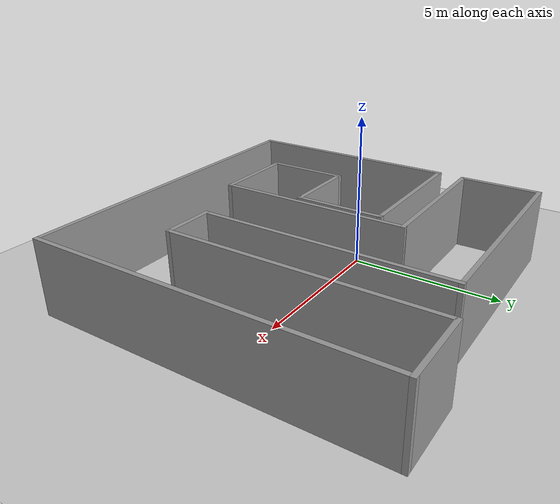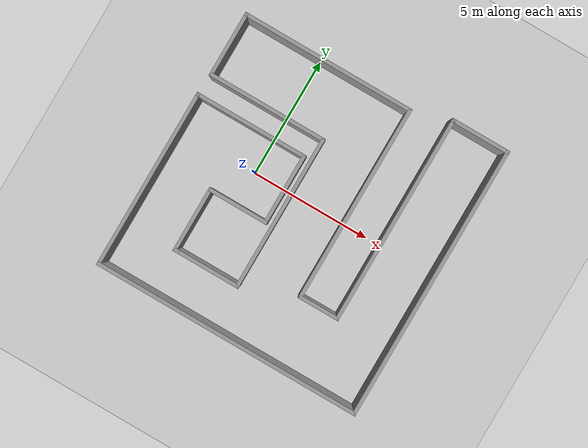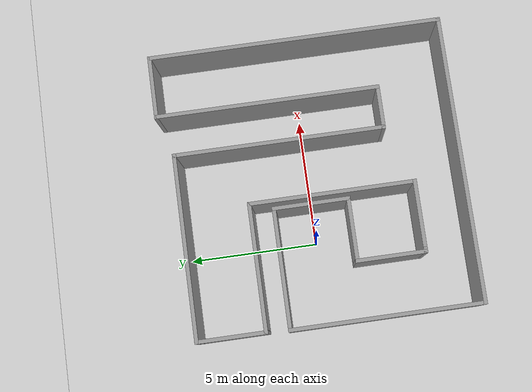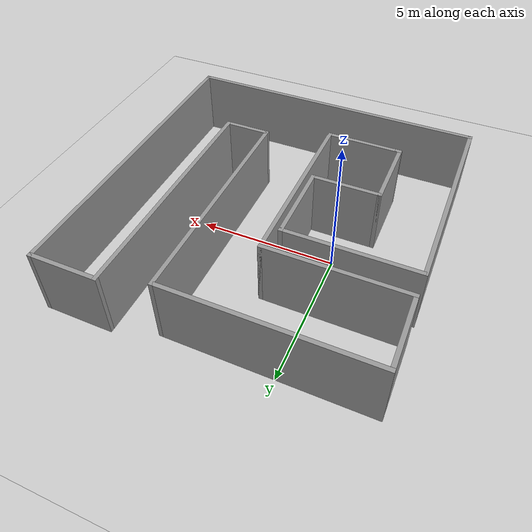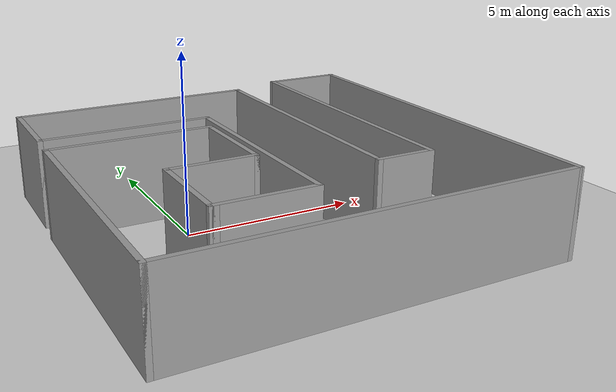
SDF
<sdf version="1.7">
 <world name="default">
  <light name="sun" type="directional">
   <pose>0 0 10 0 -0 0</pose>
   <diffuse>0.8 0.8 0.8 1</diffuse>
   <specular>0.2 0.2 0.2 1</specular>
   <attenuation>
    <range>1000</range>
    <constant>0.9</constant>
    <linear>0.01</linear>
    <quadratic>0.001</quadratic>
   </attenuation>
   <direction>-0.5 0.1 -0.9</direction>
   <spot><inner_angle>0</inner_angle><outer_angle>0</outer_angle><falloff>0</falloff></spot>
  </light>
  <model name="ground_plane">
   <static>1</static>
   <link name="link">
    <collision name="collision">
     <geometry><plane><normal>0 0 1</normal><size>100 100</size></plane></geometry>
     <surface>
      <contact><collide_bitmask>65535</collide_bitmask></contact>
      <friction><ode><mu>100</mu><mu2>50</mu2></ode></friction>
     </surface>
    </collision>
    <visual name="visual">
     <cast_shadows>0</cast_shadows>
     <geometry><plane><normal>0 0 1</normal><size>100 100</size></plane></geometry>
     <material>
      <script><uri>file://media/materials/scripts/gazebo.material</uri><name>Gazebo/Grey</name></script>
     </material>
    </visual>
   </link>
  </model>
  <gravity>0 0 -9.8</gravity>
  <magnetic_field>6e-06 2.3e-05 -4.2e-05</magnetic_field>
  <atmosphere type="adiabatic"/>
  <physics type="ode">
   <max_step_size>0.001</max_step_size>
   <real_time_factor>1</real_time_factor>
   <real_time_update_rate>1000</real_time_update_rate>
  </physics>
  <scene><ambient>0.4 0.4 0.4 1</ambient><background>0.7 0.7 0.7 1</background><shadows>1</shadows></scene>
  <audio><device>default</device></audio>
  <spherical_coordinates>
   <surface_model>EARTH_WGS84</surface_model>
   <latitude_deg>0</latitude_deg>
   <longitude_deg>0</longitude_deg>
   <elevation>0</elevation>
   <heading_deg>0</heading_deg>
  </spherical_coordinates>
  <model name="envi6">
   <pose>2.29548 -0.233575 0 0 -0 0</pose>
   <link name="Wall_10">
    <collision name="Wall_10_Collision">
     <geometry><box><size>2.5 0.15 2.5</size></box></geometry>
     <pose>0 0 1.25 0 -0 0</pose>
    </collision>
    <visual name="Wall_10_Visual">
     <pose>0 0 1.25 0 -0 0</pose>
     <geometry><box><size>2.5 0.15 2.5</size></box></geometry>
     <material>
      <script><uri>file://media/materials/scripts/gazebo.material</uri><name>Gazebo/Grey</name></script>
      <ambient>1 1 1 1</ambient>
     </material>
     <meta><layer>0</layer></meta>
    </visual>
    <pose>4.375 5.675 0 0 -0 3.14159</pose>
   </link>
   <link name="Wall_11">
    <collision name="Wall_11_Collision">
     <geometry><box><size>8.75 0.15 2.5</size></box></geometry>
     <pose>0 0 1.25 0 -0 0</pose>
    </collision>
    <visual name="Wall_11_Visual">
     <pose>0 0 1.25 0 -0 0</pose>
     <geometry><box><size>8.75 0.15 2.5</size></box></geometry>
     <material>
      <script><uri>file://media/materials/scripts/gazebo.material</uri><name>Gazebo/Grey</name></script>
      <ambient>1 1 1 1</ambient>
     </material>
     <meta><layer>0</layer></meta>
    </visual>
    <pose>3.2 1.375 0 0 -0 -1.5708</pose>
   </link>
   <link name="Wall_12">
    <collision name="Wall_12_Collision">
     <geometry><box><size>1.75 0.15 2.5</size></box></geometry>
     <pose>0 0 1.25 0 -0 0</pose>
    </collision>
    <visual name="Wall_12_Visual">
     <pose>0 0 1.25 0 -0 0</pose>
     <geometry><box><size>1.75 0.15 2.5</size></box></geometry>
     <material>
      <script><uri>file://media/materials/scripts/gazebo.material</uri><name>Gazebo/Grey</name></script>
      <ambient>1 1 1 1</ambient>
     </material>
     <meta><layer>0</layer></meta>
    </visual>
    <pose>2.4 -2.925 0 0 -0 3.14159</pose>
   </link>
   <link name="Wall_13">
    <collision name="Wall_13_Collision">
     <geometry><box><size>8.25 0.15 2.5</size></box></geometry>
     <pose>0 0 1.25 0 -0 0</pose>
    </collision>
    <visual name="Wall_13_Visual">
     <pose>0 0 1.25 0 -0 0</pose>
     <geometry><box><size>8.25 0.15 2.5</size></box></geometry>
     <material>
      <script><uri>file://media/materials/scripts/gazebo.material</uri><name>Gazebo/Grey</name></script>
      <ambient>1 1 1 1</ambient>
     </material>
     <meta><layer>0</layer></meta>
    </visual>
    <pose>1.6 1.125 0 0 -0 1.5708</pose>
   </link>
   <link name="Wall_14">
    <collision name="Wall_14_Collision">
     <geometry><box><size>7.25 0.15 2.5</size></box></geometry>
     <pose>0 0 1.25 0 -0 0</pose>
    </collision>
    <visual name="Wall_14_Visual">
     <pose>0 0 1.25 0 -0 0</pose>
     <geometry><box><size>7.25 0.15 2.5</size></box></geometry>
     <material>
      <script><uri>file://media/materials/scripts/gazebo.material</uri><name>Gazebo/Grey</name></script>
      <ambient>1 1 1 1</ambient>
     </material>
     <meta><layer>0</layer></meta>
    </visual>
    <pose>-1.95 5.175 0 0 -0 3.14159</pose>
   </link>
   <link name="Wall_15">
    <collision name="Wall_15_Collision">
     <geometry><box><size>2.75 0.15 2.5</size></box></geometry>
     <pose>0 0 1.25 0 -0 0</pose>
    </collision>
    <visual name="Wall_15_Visual">
     <pose>0 0 1.25 0 -0 0</pose>
     <geometry><box><size>2.75 0.15 2.5</size></box></geometry>
     <material>
      <script><uri>file://media/materials/scripts/gazebo.material</uri><name>Gazebo/Grey</name></script>
      <ambient>1 1 1 1</ambient>
     </material>
     <meta><layer>0</layer></meta>
    </visual>
    <pose>-5.5 3.875 0 0 -0 -1.5708</pose>
   </link>
   <link name="Wall_16">
    <collision name="Wall_16_Collision">
     <geometry><box><size>5 0.15 2.5</size></box></geometry>
     <pose>0 0 1.25 0 -0 0</pose>
    </collision>
    <visual name="Wall_16_Visual">
     <pose>0 0 1.25 0 -0 0</pose>
     <geometry><box><size>5 0.15 2.5</size></box></geometry>
     <material>
      <script><uri>file://media/materials/scripts/gazebo.material</uri><name>Gazebo/Grey</name></script>
      <ambient>1 1 1 1</ambient>
     </material>
     <meta><layer>0</layer></meta>
    </visual>
    <pose>-3.075 2.575 0 0 -0 0</pose>
   </link>
   <link name="Wall_17">
    <collision name="Wall_17_Collision">
     <geometry><box><size>6.5 0.15 2.5</size></box></geometry>
     <pose>0 0 1.25 0 -0 0</pose>
    </collision>
    <visual name="Wall_17_Visual">
     <pose>0 0 1.25 0 -0 0</pose>
     <geometry><box><size>6.5 0.15 2.5</size></box></geometry>
     <material>
      <script><uri>file://media/materials/scripts/gazebo.material</uri><name>Gazebo/Grey</name></script>
      <ambient>1 1 1 1</ambient>
     </material>
     <meta><layer>0</layer></meta>
    </visual>
    <pose>-0.65 -0.6 0 0 -0 -1.5708</pose>
   </link>
   <link name="Wall_18">
    <collision name="Wall_18_Collision">
     <geometry><box><size>2.75 0.15 2.5</size></box></geometry>
     <pose>0 0 1.25 0 -0 0</pose>
    </collision>
    <visual name="Wall_18_Visual">
     <pose>0 0 1.25 0 -0 0</pose>
     <geometry><box><size>2.75 0.15 2.5</size></box></geometry>
     <material>
      <script><uri>file://media/materials/scripts/gazebo.material</uri><name>Gazebo/Grey</name></script>
      <ambient>1 1 1 1</ambient>
     </material>
     <meta><layer>0</layer></meta>
    </visual>
    <pose>-1.95 -3.775 0 0 -0 3.14159</pose>
   </link>
   <link name="Wall_19">
    <collision name="Wall_19_Collision">
     <geometry><box><size>0.25 0.15 2.5</size></box></geometry>
     <pose>0 0 1.25 0 -0 0</pose>
    </collision>
    <visual name="Wall_19_Visual">
     <pose>0 0 1.25 0 -0 0</pose>
     <geometry><box><size>0.25 0.15 2.5</size></box></geometry>
     <material>
      <script><uri>file://media/materials/scripts/gazebo.material</uri><name>Gazebo/Grey</name></script>
      <ambient>1 1 1 1</ambient>
     </material>
     <meta><layer>0</layer></meta>
    </visual>
    <pose>-3.3 -3.775 0 0 -0 3.14159</pose>
   </link>
   <link name="Wall_20">
    <collision name="Wall_20_Collision">
     <geometry><box><size>2.75 0.15 2.5</size></box></geometry>
     <pose>0 0 1.25 0 -0 0</pose>
    </collision>
    <visual name="Wall_20_Visual">
     <pose>0 0 1.25 0 -0 0</pose>
     <geometry><box><size>2.75 0.15 2.5</size></box></geometry>
     <material>
      <script><uri>file://media/materials/scripts/gazebo.material</uri><name>Gazebo/Grey</name></script>
      <ambient>1 1 1 1</ambient>
     </material>
     <meta><layer>0</layer></meta>
    </visual>
    <pose>-3.35 -2.475 0 0 -0 1.5708</pose>
   </link>
   <link name="Wall_4">
    <collision name="Wall_4_Collision">
     <geometry><box><size>2.5 0.15 2.5</size></box></geometry>
     <pose>0 0 1.25 0 -0 0</pose>
    </collision>
    <visual name="Wall_4_Visual">
     <pose>0 0 1.25 0 -0 0</pose>
     <geometry><box><size>2.5 0.15 2.5</size></box></geometry>
     <material>
      <script><uri>file://media/materials/scripts/gazebo.material</uri><name>Gazebo/Grey</name></script>
      <ambient>1 1 1 1</ambient>
     </material>
     <meta><layer>0</layer></meta>
    </visual>
    <pose>-2.125 -1.175 0 0 -0 0</pose>
   </link>
   <link name="Wall_5">
    <collision name="Wall_5_Collision">
     <geometry><box><size>3 0.15 2.5</size></box></geometry>
     <pose>0 0 1.25 0 -0 0</pose>
    </collision>
    <visual name="Wall_5_Visual">
     <pose>0 0 1.25 0 -0 0</pose>
     <geometry><box><size>3 0.15 2.5</size></box></geometry>
     <material>
      <script><uri>file://media/materials/scripts/gazebo.material</uri><name>Gazebo/Grey</name></script>
      <ambient>1 1 1 1</ambient>
     </material>
     <meta><layer>0</layer></meta>
    </visual>
    <pose>-0.95 0.25 0 0 -0 1.5708</pose>
   </link>
   <link name="Wall_6">
    <collision name="Wall_6_Collision">
     <geometry><box><size>4.75 0.15 2.5</size></box></geometry>
     <pose>0 0 1.25 0 -0 0</pose>
    </collision>
    <visual name="Wall_6_Visual">
     <pose>0 0 1.25 0 -0 0</pose>
     <geometry><box><size>4.75 0.15 2.5</size></box></geometry>
     <material>
      <script><uri>file://media/materials/scripts/gazebo.material</uri><name>Gazebo/Grey</name></script>
      <ambient>1 1 1 1</ambient>
     </material>
     <meta><layer>0</layer></meta>
    </visual>
    <pose>-3.25 1.675 0 0 -0 3.14159</pose>
   </link>
   <link name="Wall_7">
    <collision name="Wall_7_Collision">
     <geometry><box><size>7.5 0.15 2.5</size></box></geometry>
     <pose>0 0 1.25 0 -0 0</pose>
    </collision>
    <visual name="Wall_7_Visual">
     <pose>0 0 1.25 0 -0 0</pose>
     <geometry><box><size>7.5 0.15 2.5</size></box></geometry>
     <material>
      <script><uri>file://media/materials/scripts/gazebo.material</uri><name>Gazebo/Grey</name></script>
      <ambient>1 1 1 1</ambient>
     </material>
     <meta><layer>0</layer></meta>
    </visual>
    <pose>-5.55 -2 0 0 -0 -1.5708</pose>
   </link>
   <link name="Wall_8">
    <collision name="Wall_8_Collision">
     <geometry><box><size>11.25 0.15 2.5</size></box></geometry>
     <pose>0 0 1.25 0 -0 0</pose>
    </collision>
    <visual name="Wall_8_Visual">
     <pose>0 0 1.25 0 -0 0</pose>
     <geometry><box><size>11.25 0.15 2.5</size></box></geometry>
     <material>
      <script><uri>file://media/materials/scripts/gazebo.material</uri><name>Gazebo/Grey</name></script>
      <ambient>1 1 1 1</ambient>
     </material>
     <meta><layer>0</layer></meta>
    </visual>
    <pose>-0 -5.675 0 0 -0 0</pose>
   </link>
   <link name="Wall_9">
    <collision name="Wall_9_Collision">
     <geometry><box><size>11.5 0.15 2.5</size></box></geometry>
     <pose>0 0 1.25 0 -0 0</pose>
    </collision>
    <visual name="Wall_9_Visual">
     <pose>0 0 1.25 0 -0 0</pose>
     <geometry><box><size>11.5 0.15 2.5</size></box></geometry>
     <material>
      <script><uri>file://media/materials/scripts/gazebo.material</uri><name>Gazebo/Grey</name></script>
      <ambient>1 1 1 1</ambient>
     </material>
     <meta><layer>0</layer></meta>
    </visual>
    <pose>5.55 0 0 0 -0 1.5708</pose>
   </link>
   <static>1</static>
  </model>
 </world>
</sdf>
